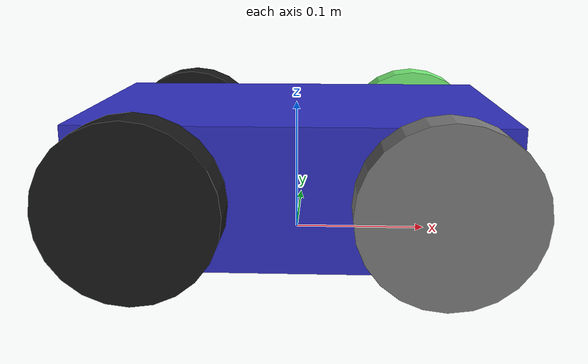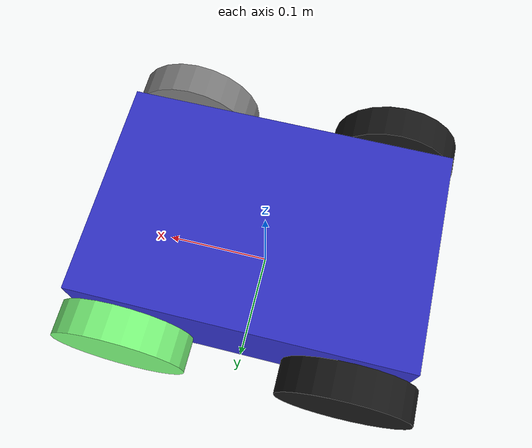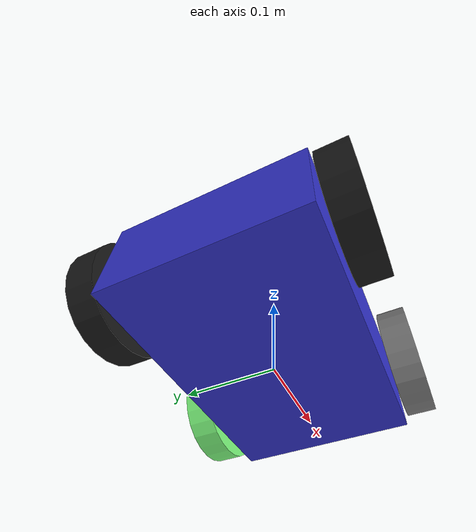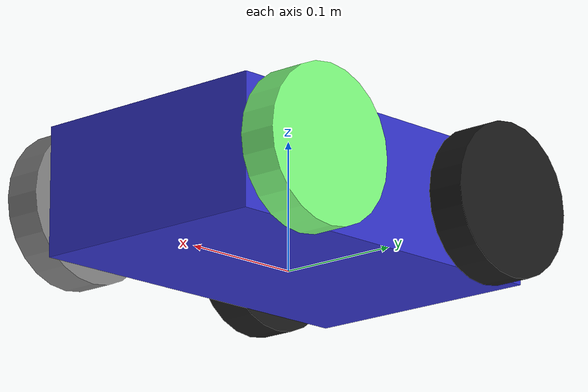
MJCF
<mujoco model="4_wheel_robot_mocap">

  <compiler angle="radian" coordinate="local"/>
  <option timestep="0.01" gravity="0 0 -9.81"/>

  <asset>
  <texture name="wheel_texture" type="2d" builtin="checker" width="64" height="64"
           rgb1="0 0 0" rgb2="1 1 1" />
  <material name="wheel_mat" texture="wheel_texture" texrepeat="10 1"/>
  <texture name="wheel_texture2" type="2d" builtin="checker" width="64" height="64"
           rgb1="0 1 0" rgb2="1 2 1" />
  <material name="wheel_mat2" texture="wheel_texture2" texrepeat="10 1"/>
  </asset>

  <worldbody>

    <body name="base" pos="0 0 0.05">
      <joint name="base_free_joint" type="free"/>
      <geom type="box" size="0.15 0.1 0.05" rgba="0.2 0.2 0.8 1"/>

      <body name="front_left_wheel" pos="0.1 -0.135 0">
        <joint name="front_left_wheel_joint" type="hinge" axis="0 1 0"/>
        <geom type="cylinder" size="0.06 0.015" material="wheel_mat" fromto="0 0 0 0 0.03 0"/>
      </body>

      <body name="front_right_wheel" pos="0.1 0.105 0">
        <joint name="front_right_wheel_joint" type="hinge" axis="0 1 0"/>
        <geom type="cylinder" size="0.06 0.015" material="wheel_mat2" fromto="0 0 0 0 0.03 0"/>
      </body>

      <body name="rear_left_wheel" pos="-0.1 -0.135 0">
        <geom type="cylinder" size="0.06 0.015" fromto="0 0 0 0 0.03 0" rgba="0.1 0.1 0.1 1"/>
      </body>

      <body name="rear_right_wheel" pos="-0.1 0.105 0">
        <geom type="cylinder" size="0.06 0.015" fromto="0 0 0 0 0.03 0" rgba="0.1 0.1 0.1 1"/>
      </body>
    </body>
  </worldbody>

  <actuator>
    <motor joint="front_left_wheel_joint" ctrlrange="-1 1" ctrllimited="true"/>
    <motor joint="front_right_wheel_joint" ctrlrange="-1 1" ctrllimited="true"/>
  </actuator>

</mujoco>
